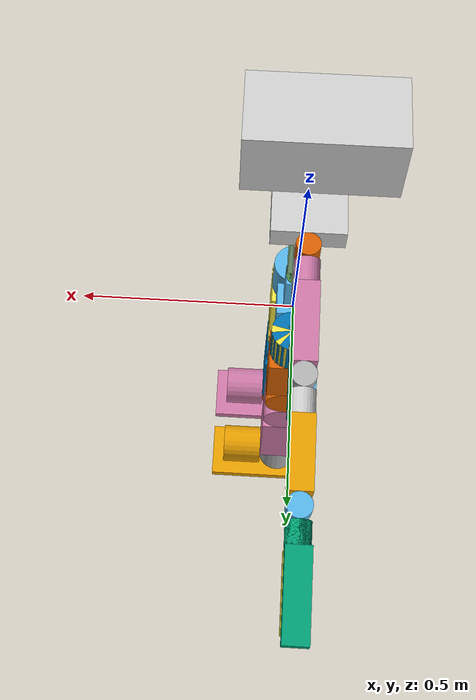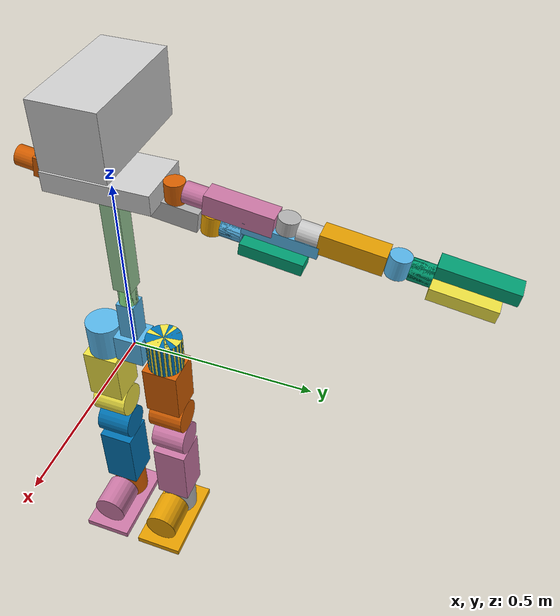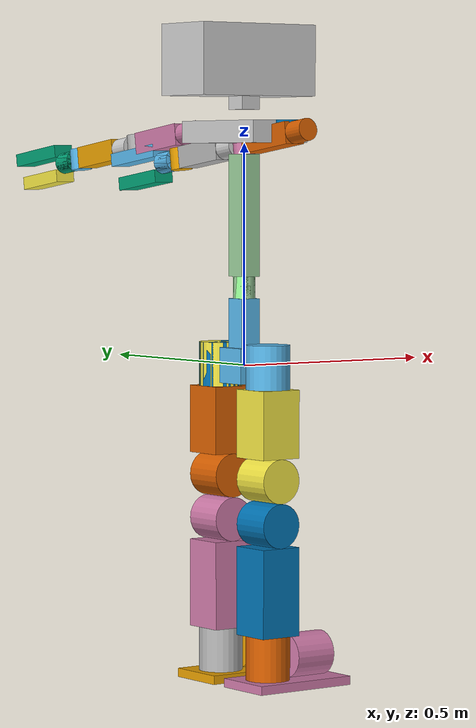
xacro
<?xml version="1.0"?>

<robot xmlns:xacro="http://ros.org/wiki/xacro" name="simple_humanoid">
  <link name="base_link"/>

  <material name="WAIST_LINK1_APP">
    <color rgba="0.6 1.0 0.6 1"/>
  </material>

  <material name="WAIST_LINK2_APP">
    <color rgba="0.6 0.8 0.6 1"/>
  </material>

  <material name="WAIST_LINK3_APP">
    <color rgba="0.8 0.8 0.8 1"/>
  </material>

  <!-- VRML link name="WAIST_LINK0" -->
  <link name="BODY">
    <inertial>
      <origin xyz="0 0 0.0375" rpy="0 0 0"/>
      <mass value="27"/>
      <inertia ixx="1" ixy="0" ixz="0" iyy="1" iyz="0" izz="1" />
    </inertial>

    <visual>
      <origin xyz="0 0 0.0955" rpy="0 0 0"/>
      <geometry>
	<box size="0.05 0.05 0.111"/>
      </geometry>
    </visual>

    <visual>
      <origin xyz="0 0 0" rpy="0 0 0"/>
      <geometry>
	<box size="0.08 0.08 0.08"/>
      </geometry>
    </visual>

  </link>

  <link name="WAIST_LINK1">
    <inertial>
      <origin xyz="0 0 -0.1" rpy="0 0 0"/>
      <mass value="6"/>
      <inertia ixx="1" ixy="0" ixz="0" iyy="1" iyz="0" izz="1" />
    </inertial>

    <visual>
      <geometry>
        <cylinder length="0.05" radius="0.025"/>
      </geometry>
      <material name="WAIST_LINK1_APP"/>
    </visual>

  </link>

  <link name="WAIST_LINK2">
    <inertial>
      <origin xyz="0.11 0 0.25" rpy="0 0 0"/>
      <mass value="30"/>
      <inertia ixx="1" ixy="0" ixz="0" iyy="1" iyz="0" izz="1" />
    </inertial>

    <visual>
      <origin xyz="0 0 0" rpy="0 0 1.5708" />
      <geometry>
        <cylinder length="0.05" radius="0.025"/>
      </geometry>
      <material name="WAIST_LINK2_APP"/>
    </visual>

    <visual>
      <origin xyz="0 0 0.1625" rpy="0 0 0" />
      <geometry>
	<box size="0.05 0.05 0.275" />
      </geometry>
      <material name="WAIST_LINK2_APP"/>
    </visual>

  </link>

  <!-- VRML link name="WAIST_LINK3" -->
  <link name="torso">
    <inertial>
      <origin xyz="0 0 0" rpy="0 0 0"/>
      <mass value="13"/>
      <inertia ixx="1" ixy="0" ixz="0" iyy="1" iyz="0" izz="1" />
    </inertial>

    <visual>
      <origin xyz="0 0 0" rpy="1.5708 0 0" />
      <geometry>
	<cylinder length="0.1" radius="0.025" />
      </geometry>
      <material name="WAIST_LINK3_APP"/>
    </visual>

    <visual>
      <geometry>
	<box size="0.15 0.27 0.05" />
      </geometry>
      <material name="WAIST_LINK3_APP"/>
    </visual>

    <visual>
      <origin xyz="0 0 0.065" rpy="0 0 0" />
      <geometry>
	<box size="0.05 0.05 0.03" />
      </geometry>
      <material name="WAIST_LINK3_APP"/>
    </visual>

    <visual>
      <origin xyz="-0.015 0 0.16" rpy="0 0 0" />
      <geometry>
	<box size="0.31 0.16 0.16" />
      </geometry>
      <material name="WAIST_LINK3_APP"/>
    </visual>

  </link>

  <link name="LARM_LINK1">
    <inertial>
      <origin xyz="0.1 0 0" rpy="0 0 0"/>
      <mass value="3"/>
      <inertia ixx="1" ixy="0" ixz="0" iyy="1" iyz="0" izz="1" />
    </inertial>

    <visual>
      <origin xyz="0 -0.05 0.0" rpy="0 0 0" />
      <geometry>
	<cylinder length="0.05" radius="0.025" />
      </geometry>
    </visual>

  </link>

  <link name="LARM_LINK2">
    <inertial>
      <origin xyz="0 0 -0.1" rpy="0 0 0"/>
      <mass value="0.6"/>
      <inertia ixx="1" ixy="0" ixz="0" iyy="1" iyz="0" izz="1" />
    </inertial>

    <visual>
      <origin xyz="0 0.0 0.0" rpy="0 0 1.5708" />
      <geometry>
	<cylinder length="0.05" radius="0.025" />
      </geometry>
    </visual>

    <visual>
      <origin xyz="0 0.0 -0.1065" rpy="0 0 0" />
      <geometry>
	<box size="0.05 0.05 0.163" />
      </geometry>
    </visual>

  </link>

  <link name="LARM_LINK3">
    <inertial>
      <origin xyz="0 0 0" rpy="0 0 0"/>
      <mass value="1"/>
      <inertia ixx="1" ixy="0" ixz="0" iyy="1" iyz="0" izz="1" />
    </inertial>

    <visual>
      <origin xyz="0 0.0 0.05" rpy="1.5708 0 0 " />
      <geometry>
	<cylinder length="0.05" radius="0.025" />
      </geometry>
    </visual>

  </link>

  <link name="LARM_LINK4">
    <inertial>
      <origin xyz="0 0 -0.3" rpy="0 0 0"/>
      <mass value="0.6"/>
      <inertia ixx="1" ixy="0" ixz="0" iyy="1" iyz="0" izz="1" />
    </inertial>

    <visual>
      <geometry>
	<cylinder length="0.05" radius="0.025" />
      </geometry>
      <material name="WAIST_LINK3_APP"/>
    </visual>

    <visual>
      <origin xyz="0 0.0 -0.0985" rpy="0 0 0" />
      <geometry>
	<box size="0.05 0.05 0.147" />
      </geometry>
    </visual>

  </link>

  <link name="LARM_LINK5">
    <inertial>
      <origin xyz="0 0 0.1" rpy="0 0 0"/>
      <mass value="0.4"/>
      <inertia ixx="1" ixy="0" ixz="0" iyy="1" iyz="0" izz="1" />
    </inertial>

    <visual>
      <origin xyz="0 0 0.05" rpy="1.5708 0 0"/>
      <geometry>
	<cylinder length="0.05" radius="0.025" />
      </geometry>
    </visual>

  </link>

  <link name="LARM_LINK6">
    <inertial>
      <origin xyz="-0.1 0 0" rpy="0 0 0"/>
      <mass value="0.4"/>
      <inertia ixx="1" ixy="0" ixz="0" iyy="1" iyz="0" izz="1" />
    </inertial>

    <visual>
      <geometry>
	<cylinder length="0.05" radius="0.025" />
      </geometry>
    </visual>

    <visual>
      <origin xyz="0 0 0" rpy="0 0 1.5708"/>
      <geometry>
	<cylinder length="0.05" radius="0.025" />
      </geometry>
    </visual>

    <visual>
      <origin xyz="0 0.03 -0.1125" rpy="0 0 0"/>
      <geometry>
	<box size="0.05 0.03 0.175" />
      </geometry>
    </visual>

  </link>

  <!-- VRML link name="LARM_LINK7" -->
  <link name="l_wrist">
    <inertial>
      <origin xyz="0 0 -0.1" rpy="0 0 0"/>
      <mass value="0.4"/>
      <inertia ixx="1" ixy="0" ixz="0" iyy="1" iyz="0" izz="1" />
    </inertial>

    <visual>
      <origin xyz="0 -0.03 -0.1" rpy="0 0 0"/>
      <geometry>
	<box size="0.05 0.03 0.15" />
      </geometry>
    </visual>

  </link>

  <link name="RARM_LINK1">
    <inertial>
      <origin xyz="0.1 0 0" rpy="0 0 0"/>
      <mass value="3"/>
      <inertia ixx="1" ixy="0" ixz="0" iyy="1" iyz="0" izz="1" />
    </inertial>

    <visual>
      <origin xyz="0 0.05 0.0" rpy="0 0 0" />
      <geometry>
	<cylinder length="0.05" radius="0.025" />
      </geometry>
    </visual>
  </link>

  <link name="RARM_LINK2">
    <inertial>
      <origin xyz="0 0 -0.1" rpy="0 0 0"/>
      <mass value="0.6"/>
      <inertia ixx="1" ixy="0" ixz="0" iyy="1" iyz="0" izz="1" />
    </inertial>

    <visual>
      <origin xyz="0 0.0 0.0" rpy="0 0 1.5708" />
      <geometry>
	<cylinder length="0.05" radius="0.025" />
      </geometry>
    </visual>

    <visual>
      <origin xyz="0 0.0 -0.1065" rpy="0 0 0" />
      <geometry>
	<box size="0.05 0.05 0.163" />
      </geometry>
    </visual>
  </link>

  <link name="RARM_LINK3">
    <inertial>
      <origin xyz="0 0 0" rpy="0 0 0"/>
      <mass value="1"/>
      <inertia ixx="1" ixy="0" ixz="0" iyy="1" iyz="0" izz="1" />
    </inertial>

    <visual>
      <origin xyz="0 0.0 0.05" rpy="1.5708 0 0 " />
      <geometry>
	<cylinder length="0.05" radius="0.025" />
      </geometry>
    </visual>
  </link>

  <link name="RARM_LINK4">
    <inertial>
      <origin xyz="0 0 -0.3" rpy="0 0 0"/>
      <mass value="0.6"/>
      <inertia ixx="1" ixy="0" ixz="0" iyy="1" iyz="0" izz="1" />
    </inertial>

    <visual>
      <geometry>
	<cylinder length="0.05" radius="0.025" />
      </geometry>
      <material name="WAIST_LINK3_APP"/>
    </visual>

    <visual>
      <origin xyz="0 0.0 -0.0985" rpy="0 0 0" />
      <geometry>
	<box size="0.05 0.05 0.147" />
      </geometry>
    </visual>
  </link>

  <link name="RARM_LINK5">
    <inertial>
      <origin xyz="0 0 0.1" rpy="0 0 0"/>
      <mass value="0.4"/>
      <inertia ixx="1" ixy="0" ixz="0" iyy="1" iyz="0" izz="1" />
    </inertial>

    <visual>
      <origin xyz="0 0 0.05" rpy="1.5708 0 0"/>
      <geometry>
	<cylinder length="0.05" radius="0.025" />
      </geometry>
    </visual>
  </link>

  <link name="RARM_LINK6">
    <inertial>
      <origin xyz="-0.1 0 0" rpy="0 0 0"/>
      <mass value="0.4"/>
      <inertia ixx="1" ixy="0" ixz="0" iyy="1" iyz="0" izz="1" />
    </inertial>

    <visual>
      <geometry>
	<cylinder length="0.05" radius="0.025" />
      </geometry>
    </visual>

    <visual>
      <origin xyz="0 0 0" rpy="0 0 1.5708"/>
      <geometry>
	<cylinder length="0.05" radius="0.025" />
      </geometry>
    </visual>

    <visual>
      <origin xyz="0 0.03 -0.1125" rpy="0 0 0"/>
      <geometry>
	<box size="0.05 0.03 0.175" />
      </geometry>
    </visual>
  </link>

  <!-- VRML link name="RARM_LINK7" -->
  <link name="r_wrist">
    <inertial>
      <origin xyz="0 0 -0.1" rpy="0 0 0"/>
      <mass value="0.4"/>
      <inertia ixx="1" ixy="0" ixz="0" iyy="1" iyz="0" izz="1" />
    </inertial>

    <visual>
      <origin xyz="0 -0.03 -0.1" rpy="0 0 0"/>
      <geometry>
	<box size="0.05 0.03 0.15" />
      </geometry>
    </visual>
  </link>

  <link name="LLEG_LINK1">
    <inertial>
      <origin xyz="0 0.1 0" rpy="0 0 0"/>
      <mass value="2.5"/>
      <inertia ixx="1" ixy="0" ixz="0" iyy="1" iyz="0" izz="1" />
    </inertial>

    <visual>
      <origin rpy="0 0 1.57075" xyz="0 0 0"/>
      <geometry>
	<cylinder radius="0.05" length="0.1" />
      </geometry>
    </visual>
  </link>

  <link name="LLEG_LINK2">
    <inertial>
      <origin xyz="0 0 -0.15" rpy="0 0 0"/>
      <mass value="2"/>
      <inertia ixx="1" ixy="0" ixz="0" iyy="1" iyz="0" izz="1" />
    </inertial>

    <visual>
      <geometry>
	<cylinder radius="0.05" length="0.1" />
      </geometry>
    </visual>

  </link>

  <link name="LLEG_LINK3">
    <inertial>
      <origin xyz="0 0.04 0" rpy="0 0 0"/>
      <mass value="5.1"/>
      <inertia ixx="1" ixy="0" ixz="0" iyy="1" iyz="0" izz="1" />
    </inertial>

    <visual>
      <origin rpy="0 0.0 0" xyz="0 0 0.22675"/>
      <geometry>
	<box size="0.1 0.1 0.1535" />
      </geometry>
    </visual>

    <visual>
      <origin rpy="1.5708 0.0 0" xyz="0 0 0.1"/>
      <geometry>
	<cylinder radius="0.05" length="0.1" />
      </geometry>
    </visual>

  </link>

  <link name="LLEG_LINK4">
    <inertial>
      <origin xyz="0 0 -0.3" rpy="0 0 0"/>
      <mass value="7"/>
      <inertia ixx="1" ixy="0" ixz="0" iyy="1" iyz="0" izz="1" />
    </inertial>

    <visual>
      <origin rpy="1.5708 0  0.0" xyz="0 0 0"/>
      <geometry>
	<cylinder radius="0.05" length="0.1" />
      </geometry>
    </visual>

    <visual>
      <origin rpy="0 0.0 0.0" xyz="0 0 -0.15"/>
      <geometry>
	<box size="0.1 0.1 0.2" />
      </geometry>
    </visual>

  </link>

  <link name="LLEG_LINK5">
    <inertial>
      <origin xyz="-0.15 0 0" rpy="0 0 0"/>
      <mass value="2.5"/>
      <inertia ixx="1" ixy="0" ixz="0" iyy="1" iyz="0" izz="1" />
    </inertial>

    <visual>
      <geometry>
        <cylinder length="0.1" radius="0.05"/>
      </geometry>
    </visual>

  </link>

  <!-- VRML link name="LLEG_LINK6" -->
  <link name="l_ankle">
    <inertial>
      <origin xyz="0.28 0 -0.2" rpy="0 0 0"/>
      <mass value="1.9"/>
      <inertia ixx="1" ixy="0" ixz="0" iyy="1" iyz="0" izz="1" />
    </inertial>

    <visual>
      <origin rpy="0.0 0.0 0.0" xyz="0.055 0 -0.06"/>
      <geometry>
	<box size="0.25 0.14 0.02"/>
      </geometry>
    </visual>

    <visual>
      <origin rpy="0.0 1.5708 0.0 " xyz="0.1 0 0.0"/>
      <geometry>
        <cylinder length="0.1" radius="0.05"/>
      </geometry>
     </visual>

  </link>

  <link name="RLEG_LINK1">
    <inertial>
      <origin xyz="0 -0.1 0" rpy="0 0 0"/>
      <mass value="2.5"/>
      <inertia ixx="1" ixy="0" ixz="0" iyy="1" iyz="0" izz="1" />
    </inertial>

    <visual>
      <origin rpy="0 0 1.57075" xyz="0 0 0"/>
      <geometry>
	<cylinder radius="0.05" length="0.1" />
      </geometry>
    </visual>

  </link>

  <link name="RLEG_LINK2">
    <inertial>
      <origin xyz="0 0 -0.15" rpy="0 0 0"/>
      <mass value="2"/>
      <inertia ixx="1" ixy="0" ixz="0" iyy="1" iyz="0" izz="1" />
    </inertial>

    <visual>
      <origin rpy="0 0 1.57075" xyz="0 0 0"/>
      <geometry>
	<cylinder radius="0.05" length="0.1" />
      </geometry>
    </visual>

  </link>

  <link name="RLEG_LINK3">
    <inertial>
      <origin xyz="0 -0.04 0" rpy="0 0 0"/>
      <mass value="5.1"/>
      <inertia ixx="1" ixy="0" ixz="0" iyy="1" iyz="0" izz="1" />
    </inertial>

    <visual>
      <origin rpy="0 0.0 0" xyz="0 0 0.22675"/>
      <geometry>
	<box size="0.1 0.1 0.1535" />
      </geometry>
    </visual>

    <visual>
      <origin rpy="1.5708 0.0 0" xyz="0 0 0.1"/>
      <geometry>
	<cylinder radius="0.05" length="0.1" />
      </geometry>
    </visual>

  </link>

  <link name="RLEG_LINK4">
    <inertial>
      <origin xyz="0 0 -0.3" rpy="0 0 0"/>
      <mass value="7"/>
      <inertia ixx="1" ixy="0" ixz="0" iyy="1" iyz="0" izz="1" />
    </inertial>

    <visual>
      <origin rpy="1.5708 0  0.0" xyz="0 0 0"/>
      <geometry>
	<cylinder radius="0.05" length="0.1" />
      </geometry>
    </visual>

    <visual>
      <origin rpy="0 0.0 0.0" xyz="0 0 -0.15"/>
      <geometry>
	<box size="0.1 0.1 0.2" />
      </geometry>
    </visual>

  </link>

  <link name="RLEG_LINK5">
    <inertial>
      <origin xyz="-0.15 0 0" rpy="0 0 0"/>
      <mass value="2.5"/>
      <inertia ixx="1" ixy="0" ixz="0" iyy="1" iyz="0" izz="1" />
    </inertial>

    <visual>
      <geometry>
        <cylinder length="0.1" radius="0.05"/>
      </geometry>
    </visual>

  </link>

  <!-- VRML link name="RLEG_LINK6" -->
  <link name="r_ankle">
    <inertial>
      <origin xyz="0.28 0 -0.2" rpy="0 0 0"/>
      <mass value="1.9"/>
      <inertia ixx="1" ixy="0" ixz="0" iyy="1" iyz="0" izz="1" />
    </inertial>

    <visual>
      <origin rpy="0.0 0.0 0.0" xyz="0.055 0 -0.06"/>
      <geometry>
	<box size="0.25 0.14 0.02"/>
      </geometry>
    </visual>

     <visual>
      <origin rpy="0 1.5708 0.0 " xyz="0.1 0 0.0"/>
      <geometry>
        <cylinder length="0.1" radius="0.05"/>
      </geometry>
     </visual>

  </link>

  <!--   Joints following below -->

  <joint name="waist" type="fixed">
    <parent link="base_link"/>
    <child link="BODY"/>
    <origin xyz="0 0 0" rpy="0 0 0"/>
  </joint>

  <joint name="RLEG_HIP_R" type="revolute">
    <origin xyz="0 -0.09 0" rpy="0 0 0"/>
    <axis xyz="1 0 0"/>
    <parent link="BODY"/>
    <child link="RLEG_LINK1"/>
    <limit effort="100" lower="-0.349065850399" upper="1.57079632679" velocity="3.87" />
  </joint>

  <joint name="RLEG_HIP_P" type="revolute">
    <origin xyz="0 0 0" rpy="0 0 0"/>
    <axis xyz="0 1 0"/>
    <parent link="RLEG_LINK1"/>
    <child link="RLEG_LINK2"/>
    <limit  effort="160" lower="-0.5236" upper="0.5236" velocity="5.8"/>
  </joint>

  <joint name="RLEG_HIP_Y" type="revolute">
    <origin xyz="0 0 -0.3535" rpy="0 0 0"/>
    <axis xyz="0 0 1"/>
    <parent link="RLEG_LINK2"/>
    <child link="RLEG_LINK3"/>
    <limit effort="160" lower="-2.095" upper="0.7" velocity="5.8"/>
  </joint>

  <joint name="RLEG_KNEE" type="revolute">
    <origin xyz="0 0 0" rpy="0 0 0"/>
    <axis xyz="0 1 0"/>
    <parent link="RLEG_LINK3"/>
    <child link="RLEG_LINK4"/>
    <limit effort="300" lower="0" upper="2.618" velocity="7"/>
  </joint>

  <joint name="RLEG_ANKLE_P" type="revolute">
    <origin xyz="0 0 -0.3" rpy="0 0 0"/>
    <axis xyz="0 1 0"/>
    <parent link="RLEG_LINK4"/>
    <child link="RLEG_LINK5"/>
    <limit effort="30" lower="0" upper="2.618" velocity="5.8" />
  </joint>

  <joint name="RLEG_ANKLE_R" type="revolute">
    <origin xyz="0 0 0" rpy="0 0 0"/>
    <axis xyz="1 0 0"/>
    <parent link="RLEG_LINK5"/>
    <child link="r_ankle"/>
    <limit effort="160" lower="-1.27" upper="0.68" velocity="5.8"/>
  </joint>

  <joint name="RARM_SHOULDER_P" type="revolute">
    <origin xyz="0 -0.21 0" rpy="0 0 0"/>
    <axis xyz="0 1 0"/>
    <parent link="torso"/>
    <child link="RARM_LINK1"/>
    <limit effort="100.0" lower="-1.57079632679" upper="0.785398163397" velocity="2.7"/>
  </joint>

  <joint name="RARM_SHOULDER_R" type="revolute">
    <origin xyz="0 0 0" rpy="0 0 0"/>
    <axis xyz="1 0 0"/>
    <parent link="RARM_LINK1"/>
    <child link="RARM_LINK2"/>
    <limit effort="100.0" lower="0.00872664625997" upper="2.87106661953" velocity="3.66"/>
  </joint>

  <joint name="RARM_SHOULDER_Y" type="revolute">
    <origin xyz="0 0 -0.263" rpy="0 0 0"/>
    <axis xyz="0 0 1"/>
    <parent link="RARM_LINK2"/>
    <child link="RARM_LINK3"/>
    <limit effort="70.0" lower="-2.42600766027" upper="2.42600766027" velocity="4.58"/>
  </joint>

  <joint name="RARM_ELBOW" type="revolute">
    <origin xyz="0 0 0" rpy="0 0 0"/>
    <axis xyz="0 1 0"/>
    <parent link="RARM_LINK3"/>
    <child link="RARM_LINK4"/>
    <limit effort="70.0" lower="-2.23402144255" upper="0.00349065850399" velocity="4.58"/>
  </joint>

  <joint name="RARM_WRIST_Y" type="revolute">
    <origin xyz="0 0 -0.247" rpy="0 0 0"/>
    <axis xyz="0 0 1"/>
    <parent link="RARM_LINK4"/>
    <child link="RARM_LINK5"/>
    <limit effort="20.0" lower="-2.51327412287" upper="2.51327412287" velocity="1.95"/>
  </joint>

  <joint name="RARM_WRIST_P" type="revolute">
    <origin xyz="0 0 0" rpy="0 0 0"/>
    <axis xyz="0 1 0"/>
    <parent link="RARM_LINK5"/>
    <child link="RARM_LINK6"/>
    <limit effort="8.0" lower="-1.37008346282" upper="1.37008346282" velocity="1.76"/>
  </joint>

  <joint name="RARM_WRIST_R" type="revolute">
    <origin xyz="0 0 0" rpy="0 0 0"/>
    <axis xyz="1 0 0"/>
    <parent link="RARM_LINK6"/>
    <child link="r_wrist"/>
    <limit effort="8.0" lower="-0.680678408278" upper="0.680678408278" velocity="1.76"/>
  </joint>

  <joint name="LLEG_HIP_R" type="revolute">
    <origin xyz="0 0.09 0" rpy="0 0 0"/>
    <axis xyz="1 0 0"/>
    <parent link="BODY"/>
    <child link="LLEG_LINK1"/>
    <limit effort="100" lower="-0.349065850399" upper="1.57079632679" velocity="3.87"/>
  </joint>

  <joint name="LLEG_HIP_P" type="revolute">
    <origin xyz="0 0 0" rpy="0 0 0"/>
    <axis xyz="0 1 0"/>
    <parent link="LLEG_LINK1"/>
    <child link="LLEG_LINK2"/>
    <limit effort="100" lower="-0.349065850399" upper="1.57079632679" velocity="3.87"/>
  </joint>

  <joint name="LLEG_HIP_Y" type="revolute">
    <origin xyz="0 0 -0.3535" rpy="0 0 0"/>
    <axis xyz="0 0 1"/>
    <parent link="LLEG_LINK2"/>
    <child link="LLEG_LINK3"/>
    <limit effort="160" lower="-0.5236" upper="0.5236" velocity="5.8"/>
  </joint>

  <joint name="LLEG_KNEE" type="revolute">
    <origin xyz="0 0 0" rpy="0 0 0"/>
    <axis xyz="0 1 0"/>
    <parent link="LLEG_LINK3"/>
    <child link="LLEG_LINK4"/>
    <limit effort="160" lower="-2.095" upper="0.7" velocity="5.8"/>
  </joint>

  <joint name="LLEG_ANKLE_P" type="revolute">
    <origin xyz="0 0 -0.3" rpy="0 0 0"/>
    <axis xyz="0 1 0"/>
    <parent link="LLEG_LINK4"/>
    <child link="LLEG_LINK5"/>
    <limit effort="300" lower="0" upper="2.618" velocity="7"/>
  </joint>

  <joint name="LLEG_ANKLE_R" type="revolute">
    <origin xyz="0 0 0" rpy="0 0 0"/>
    <axis xyz="1 0 0"/>
    <parent link="LLEG_LINK5"/>
    <child link="l_ankle"/>
    <limit effort="160" lower="-1.27" upper="0.68" velocity="5.8"/>
  </joint>

  <joint name="LARM_SHOULDER_P" type="revolute">
    <origin xyz="0 0.21 0" rpy="0 0 0"/>
    <axis xyz="0 1 0"/>
    <parent link="torso"/>
    <child link="LARM_LINK1"/>
    <limit effort="100.0" lower="-1.57079632679" upper="0.785398163397" velocity="2.7"/>
  </joint>

  <joint name="LARM_SHOULDER_R" type="revolute">
    <origin xyz="0 0 0" rpy="0 0 0"/>
    <axis xyz="1 0 0"/>
    <parent link="LARM_LINK1"/>
    <child link="LARM_LINK2"/>
    <limit effort="100.0" lower="0.00872664625997" upper="2.87106661953" velocity="3.66"/>
  </joint>

  <joint name="LARM_SHOULDER_Y" type="revolute">
    <origin xyz="0 0 -0.263" rpy="0 0 0"/>
    <axis xyz="0 0 1"/>
    <parent link="LARM_LINK2"/>
    <child link="LARM_LINK3"/>
    <limit effort="100.0" lower="-1.57079632679" upper="0.785398163397" velocity="2.7"/>
  </joint>

  <joint name="LARM_ELBOW" type="revolute">
    <origin xyz="0 0 0" rpy="0 0 0"/>
    <axis xyz="0 1 0"/>
    <parent link="LARM_LINK3"/>
    <child link="LARM_LINK4"/>
    <limit effort="70.0" lower="-2.42600766027" upper="2.42600766027" velocity="4.58"/>
  </joint>

  <joint name="LARM_WRIST_Y" type="revolute">
    <origin xyz="0 0 -0.247" rpy="0 0 0"/>
    <axis xyz="0 0 1"/>
    <parent link="LARM_LINK4"/>
    <child link="LARM_LINK5"/>
    <limit effort="70.0" lower="-2.23402144255" upper="0.00349065850399" velocity="4.58"/>
  </joint>

  <joint name="LARM_WRIST_P" type="revolute">
    <origin xyz="0 0 0" rpy="0 0 0"/>
    <axis xyz="0 1 0"/>
    <parent link="LARM_LINK5"/>
    <child link="LARM_LINK6"/>
    <limit effort="20.0" lower="-2.51327412287" upper="2.51327412287" velocity="1.95"/>
  </joint>

  <joint name="LARM_WRIST_R" type="revolute">
    <origin xyz="0 0 0" rpy="0 0 0"/>
    <axis xyz="1 0 0"/>
    <parent link="LARM_LINK6"/>
    <child link="l_wrist"/>
    <limit effort="8.0" lower="-1.37008346282" upper="1.37008346282" velocity="1.76"/>
  </joint>

  <joint name="WAIST_P" type="revolute">
    <origin xyz="0 0 0.176" rpy="0 0 0"/>
    <axis xyz="0 1 0"/>
    <parent link="BODY"/>
    <child link="WAIST_LINK1"/>
    <limit effort="30" lower="-1.27" upper="1.27" velocity="1.76" />
  </joint>

  <joint name="WAIST_R" type="revolute">
    <origin xyz="0 0 0" rpy="0 0 0"/>
    <axis xyz="1 0 0"/>
    <parent link="WAIST_LINK1"/>
    <child link="WAIST_LINK2"/>
    <limit effort="30" lower="-1.27" upper="1.27" velocity="1.76" />
  </joint>

  <joint name="CHEST" type="revolute">
    <origin xyz="0 0 0.35" rpy="0 0 0"/>
    <axis xyz="0 0 1"/>
    <parent link="WAIST_LINK2"/>
    <child link="torso"/>
    <limit effort="30" lower="-1.27" upper="1.27" velocity="1.76" />
  </joint>

</robot>
